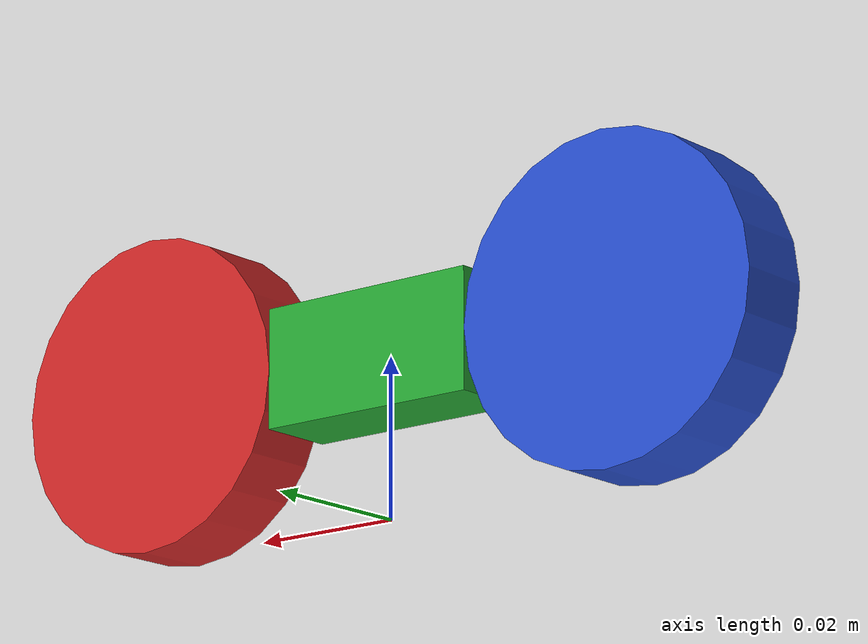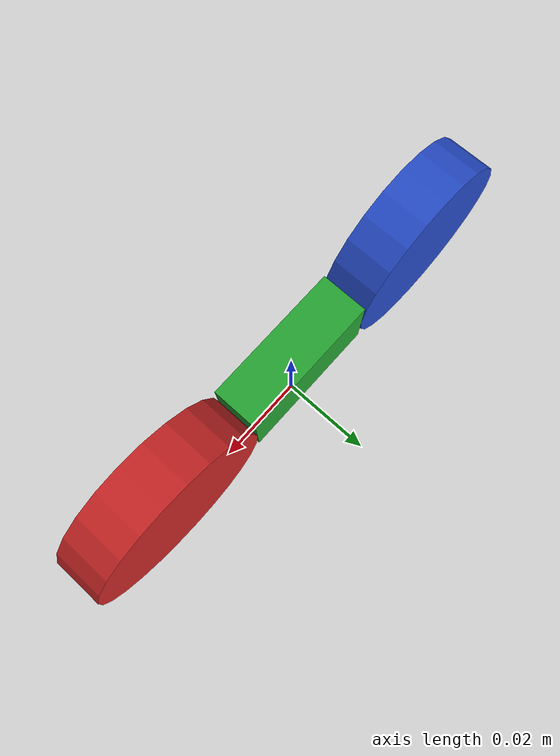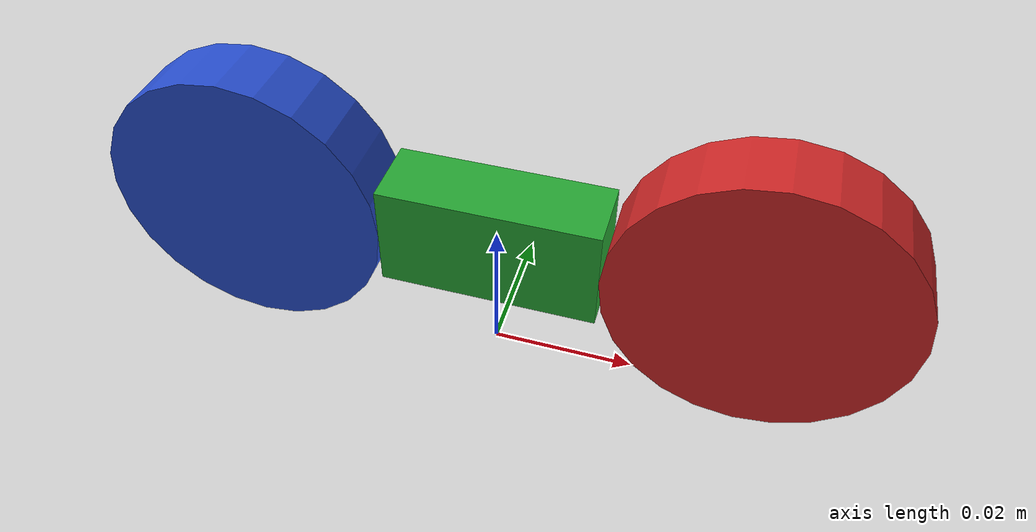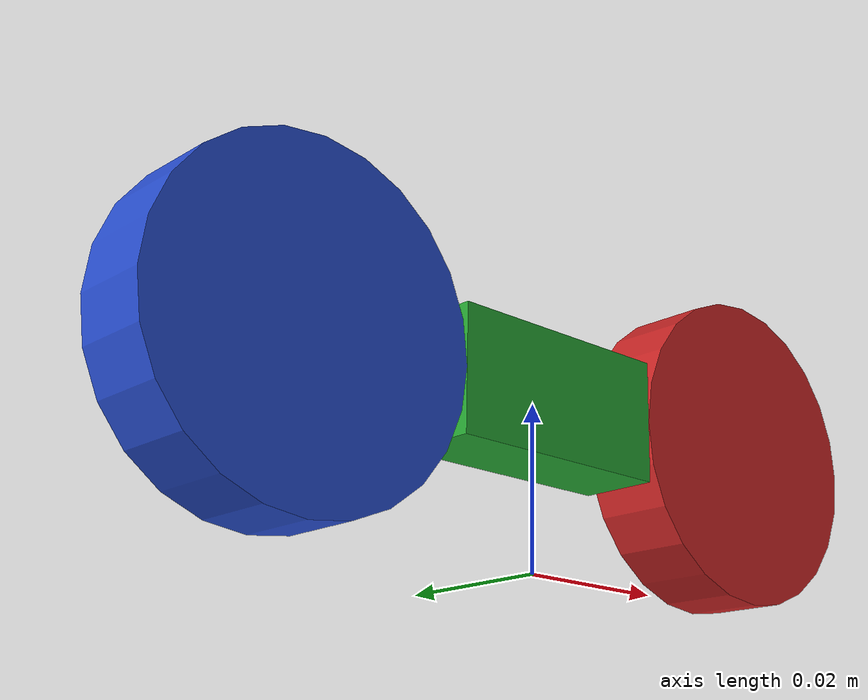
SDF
<?xml version="1.0"?>

<sdf version="1.4">
    <model name="chain_link">
        <static>false</static>
        <pose>0 0 0.02 0 0 0</pose>

        <link name="link_a">
            <pose>-0.035 0 0 0 1.5707 1.5707</pose>
            <inertial>
                <pose>0 0 0 0 0 0</pose>
                <inertia>
                    <ixx>0.0001</ixx>
                    <ixy>0</ixy>
                    <ixz>0</ixz>
                    <iyy>0.0001</iyy>
                    <iyz>0</iyz>
                    <izz>0.0001</izz>
                </inertia>
                <mass>0.05</mass>
            </inertial>
            <collision name="link_a_collision">
                <geometry>
                    <cylinder>
                        <radius>.02</radius>
                        <length>.01</length>
                    </cylinder>
                </geometry>
                <surface>
                    <friction>
                        <ode>
                            <mu>10</mu>
                            <mu2>10</mu2>
                            <slip1>1.0</slip1>
                            <slip2>1.0</slip2>
                        </ode>
                    </friction>
                </surface>
            </collision>
            <visual name="link_a_visual">
                <geometry>
                    <cylinder>
                        <radius>.02</radius>
                        <length>.01</length>
                    </cylinder>
                </geometry>
                <material>
                    <script>
                        <uri>file://media/materials/scripts/gazebo.material</uri>
                        <name>Gazebo/Blue</name>
                    </script>
                </material>
            </visual>
        </link>
        <link name="link_b">
            <pose>0.035 0 0 0 1.5707 1.5707</pose>
            <inertial>
                <pose>0 0 0 0 0 0</pose>
                <inertia>
                    <ixx>0.0001</ixx>
                    <ixy>0</ixy>
                    <ixz>0</ixz>
                    <iyy>0.0001</iyy>
                    <iyz>0</iyz>
                    <izz>0.0001</izz>
                </inertia>
                <mass>0.05</mass>
            </inertial>
            <collision name="link_b_collision">
                <geometry>
                    <cylinder>
                        <radius>.02</radius>
                        <length>.01</length>
                    </cylinder>
                </geometry>
                <surface>
                    <friction>
                        <ode>
                            <mu>10</mu>
                            <mu2>10</mu2>
                            <slip1>1.0</slip1>
                            <slip2>1.0</slip2>
                        </ode>
                    </friction>
                </surface>
            </collision>
            <visual name="link_b_visual">
                <geometry>
                    <cylinder>
                        <radius>.02</radius>
                        <length>.01</length>
                    </cylinder>
                </geometry>
                <material>
                    <script>
                        <uri>file://media/materials/scripts/gazebo.material</uri>
                        <name>Gazebo/Red</name>
                    </script>
                </material>
            </visual>
        </link>
        <link name="link_c">
            <pose>0 0 0 0 0 0</pose>
            <inertial>
                <pose>0 0 0 0 0 0</pose>
                <inertia>
                    <ixx>0.0001</ixx>
                    <ixy>0</ixy>
                    <ixz>0</ixz>
                    <iyy>0.0001</iyy>
                    <iyz>0</iyz>
                    <izz>0.0001</izz>
                </inertia>
                <mass>0.05</mass>
            </inertial>
            <collision name="link_c_collision">
                <geometry>
                    <box>
                        <size>0.03 0.01 0.015</size>
                    </box>
                </geometry>
                <surface>
                    <friction>
                        <ode>
                            <mu>10</mu>
                            <mu2>10</mu2>
                            <slip1>1.0</slip1>
                            <slip2>1.0</slip2>
                        </ode>
                    </friction>
                </surface>
            </collision>
            <visual name="link_c_visual">
                <geometry>
                    <box>
                        <size>0.03 0.01 0.015</size>
                    </box>
                </geometry>
                <material>
                    <script>
                        <uri>file://media/materials/scripts/gazebo.material</uri>
                        <name>Gazebo/Green</name>
                    </script>
                </material>
            </visual>
        </link>

        <joint name="link_a_c" type="revolute">
            <pose>0 0 0 0 0 0</pose>
            <child>link_c</child>
            <parent>link_a</parent>
            <axis>
                <limit>
                    <lower>0</lower>
                    <upper>0</upper>
                </limit>
                <xyz>0 1 0</xyz>
            </axis>
        </joint>
        <joint name="link_b_c" type="revolute">
            <pose>0 0 0 0 0 0</pose>
            <child>link_c</child>
            <parent>link_b</parent>
            <axis>
                <limit>
                    <lower>0</lower>
                    <upper>0</upper>
                </limit>
                <xyz>0 1 0</xyz>
            </axis>
        </joint>

    </model>
</sdf>
